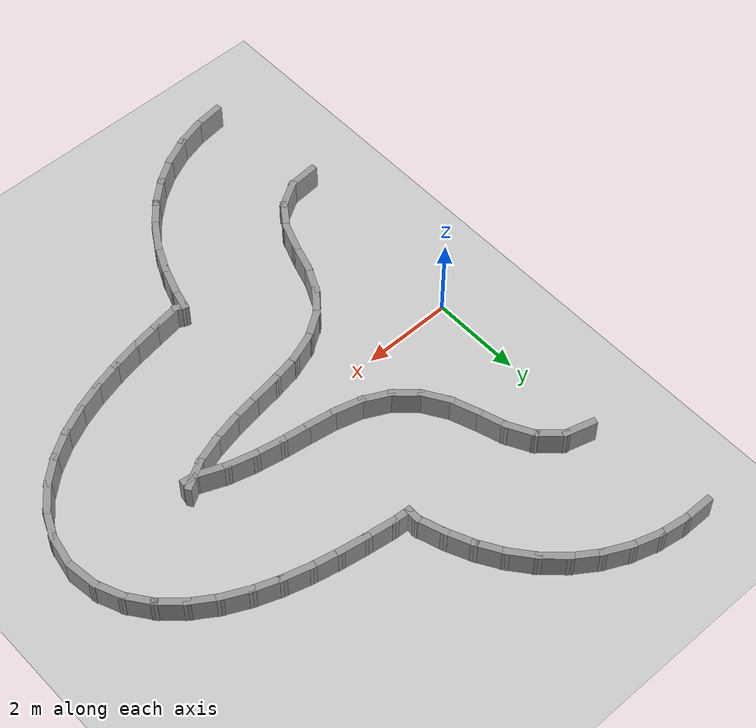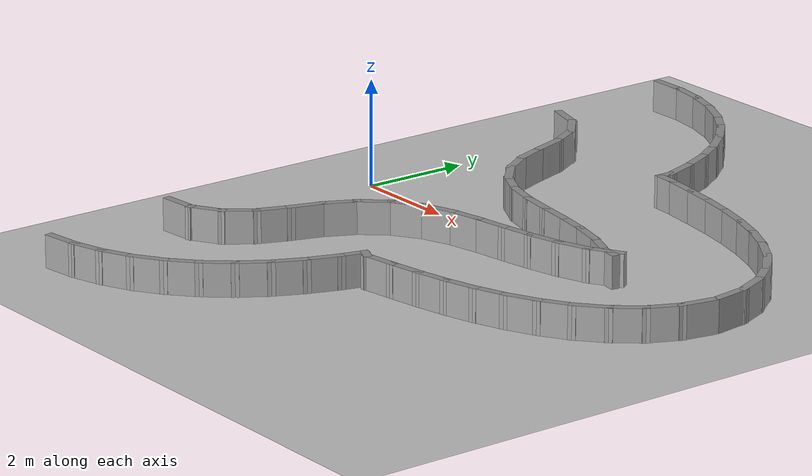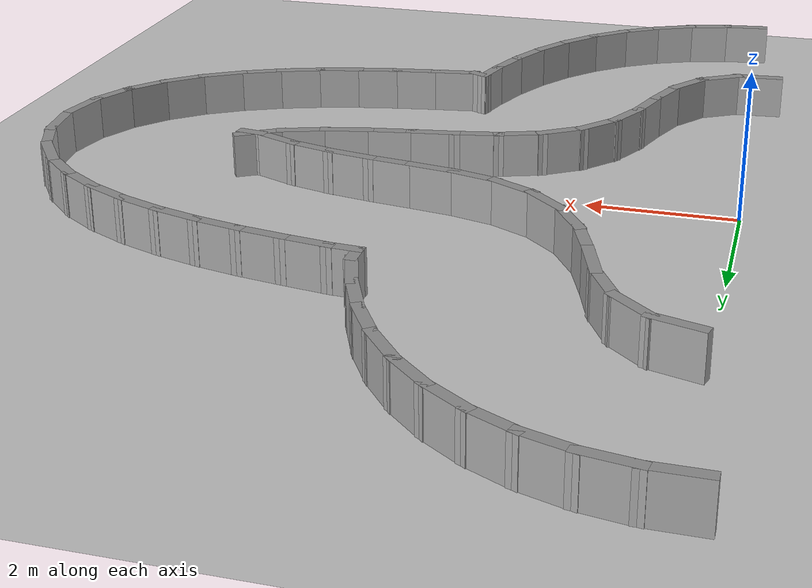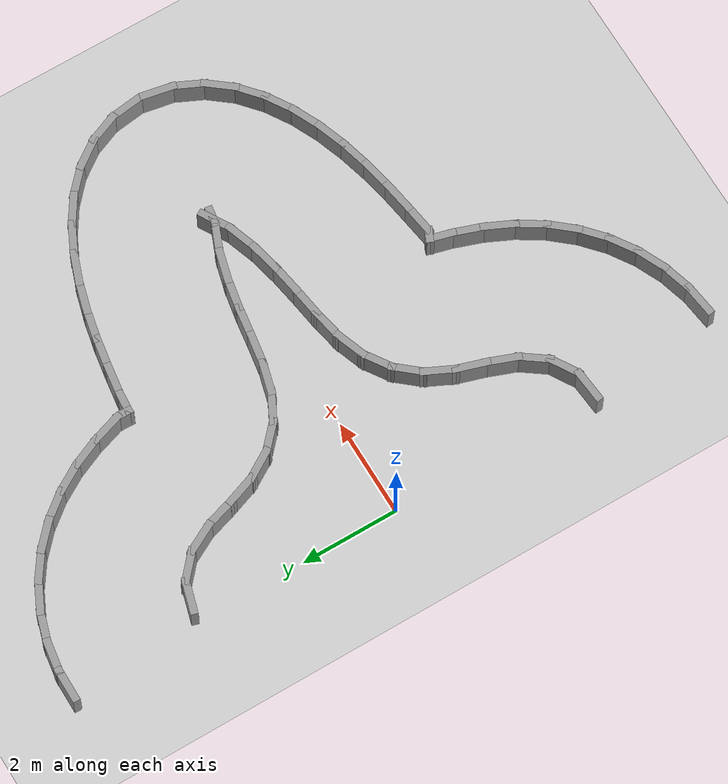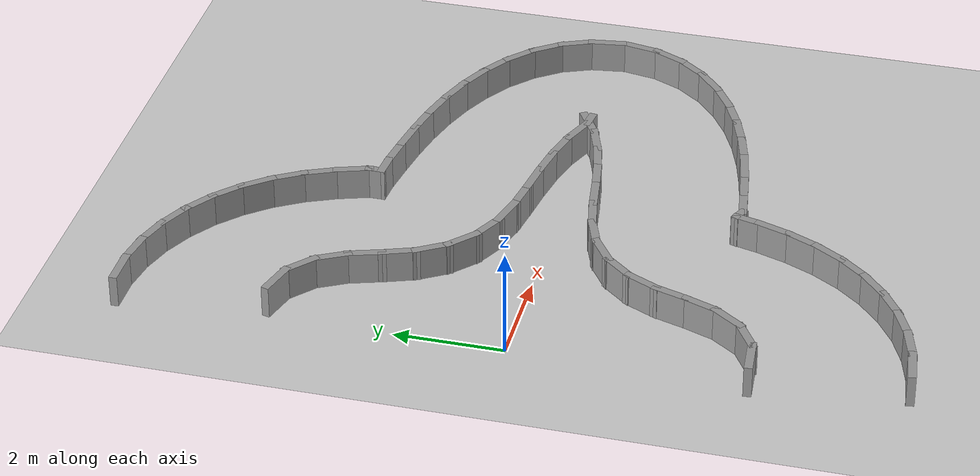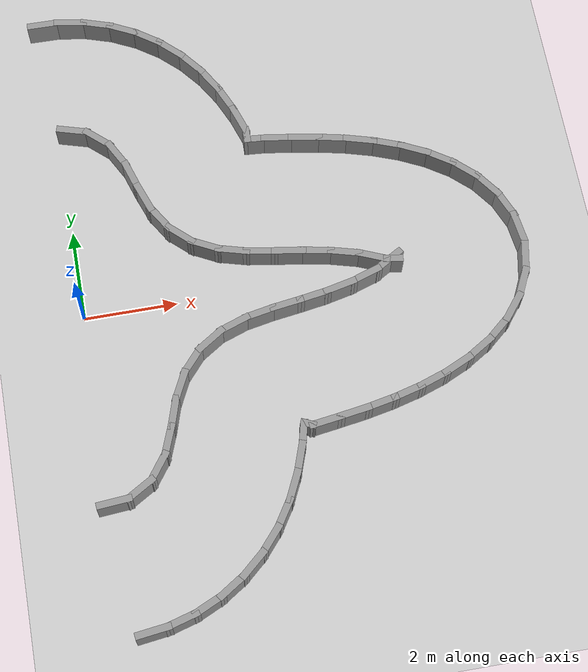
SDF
<sdf version="1.7">
 <world name="default">
  <model name="ground_plane">
   <static>1</static>
   <link name="link">
    <collision name="collision">
     <geometry><plane><normal>0 0 1</normal><size>100 100</size></plane></geometry>
     <surface><friction><ode><mu>100</mu><mu2>50</mu2></ode></friction></surface>
    </collision>
    <visual name="visual">
     <cast_shadows>0</cast_shadows>
     <geometry><plane><normal>0 0 1</normal><size>100 100</size></plane></geometry>
     <material>
      <script><uri>file://media/materials/scripts/gazebo.material</uri><name>Gazebo/Grey</name></script>
     </material>
    </visual>
   </link>
  </model>
  <model name="rand_lobed_05">
   <link name="Wall_0">
    <collision name="Wall_0_Collision">
     <geometry><box><size>0.4277 0.1500 0.6000</size></box></geometry>
     <pose>0 0 0.3000 0 -0 0</pose>
    </collision>
    <visual name="Wall_0_Visual">
     <pose>0 0 0.3000 0 -0 0</pose>
     <geometry><box><size>0.4277 0.1500 0.6000</size></box></geometry>
     <material>
      <script><uri>file://media/materials/scripts/gazebo.material</uri><name>Gazebo/Grey</name></script>
      <ambient>1 1 1 1</ambient>
     </material>
    </visual>
    <pose>6.6623 0.0193 0 0 -0 3.00180</pose>
   </link>
   <link name="Wall_1">
    <collision name="Wall_1_Collision">
     <geometry><box><size>0.7492 0.1500 0.6000</size></box></geometry>
     <pose>0 0 0.3000 0 -0 0</pose>
    </collision>
    <visual name="Wall_1_Visual">
     <pose>0 0 0.3000 0 -0 0</pose>
     <geometry><box><size>0.7492 0.1500 0.6000</size></box></geometry>
     <material>
      <script><uri>file://media/materials/scripts/gazebo.material</uri><name>Gazebo/Grey</name></script>
      <ambient>1 1 1 1</ambient>
     </material>
    </visual>
    <pose>6.2479 0.1531 0 0 -0 2.74974</pose>
   </link>
   <link name="Wall_2">
    <collision name="Wall_2_Collision">
     <geometry><box><size>0.7498 0.1500 0.6000</size></box></geometry>
     <pose>0 0 0.3000 0 -0 0</pose>
    </collision>
    <visual name="Wall_2_Visual">
     <pose>0 0 0.3000 0 -0 0</pose>
     <geometry><box><size>0.7498 0.1500 0.6000</size></box></geometry>
     <material>
      <script><uri>file://media/materials/scripts/gazebo.material</uri><name>Gazebo/Grey</name></script>
      <ambient>1 1 1 1</ambient>
     </material>
    </visual>
    <pose>5.6813 0.3449 0 0 -0 2.88060</pose>
   </link>
   <link name="Wall_3">
    <collision name="Wall_3_Collision">
     <geometry><box><size>0.7499 0.1500 0.6000</size></box></geometry>
     <pose>0 0 0.3000 0 -0 0</pose>
    </collision>
    <visual name="Wall_3_Visual">
     <pose>0 0 0.3000 0 -0 0</pose>
     <geometry><box><size>0.7499 0.1500 0.6000</size></box></geometry>
     <material>
      <script><uri>file://media/materials/scripts/gazebo.material</uri><name>Gazebo/Grey</name></script>
      <ambient>1 1 1 1</ambient>
     </material>
    </visual>
    <pose>5.0966 0.4771 0 0 -0 2.95773</pose>
   </link>
   <link name="Wall_4">
    <collision name="Wall_4_Collision">
     <geometry><box><size>0.7500 0.1500 0.6000</size></box></geometry>
     <pose>0 0 0.3000 0 -0 0</pose>
    </collision>
    <visual name="Wall_4_Visual">
     <pose>0 0 0.3000 0 -0 0</pose>
     <geometry><box><size>0.7500 0.1500 0.6000</size></box></geometry>
     <material>
      <script><uri>file://media/materials/scripts/gazebo.material</uri><name>Gazebo/Grey</name></script>
      <ambient>1 1 1 1</ambient>
     </material>
    </visual>
    <pose>4.5049 0.5756 0 0 -0 2.99577</pose>
   </link>
   <link name="Wall_5">
    <collision name="Wall_5_Collision">
     <geometry><box><size>0.7499 0.1500 0.6000</size></box></geometry>
     <pose>0 0 0.3000 0 -0 0</pose>
    </collision>
    <visual name="Wall_5_Visual">
     <pose>0 0 0.3000 0 -0 0</pose>
     <geometry><box><size>0.7499 0.1500 0.6000</size></box></geometry>
     <material>
      <script><uri>file://media/materials/scripts/gazebo.material</uri><name>Gazebo/Grey</name></script>
      <ambient>1 1 1 1</ambient>
     </material>
    </visual>
    <pose>3.9121 0.6674 0 0 -0 2.98009</pose>
   </link>
   <link name="Wall_6">
    <collision name="Wall_6_Collision">
     <geometry><box><size>0.7494 0.1500 0.6000</size></box></geometry>
     <pose>0 0 0.3000 0 -0 0</pose>
    </collision>
    <visual name="Wall_6_Visual">
     <pose>0 0 0.3000 0 -0 0</pose>
     <geometry><box><size>0.7494 0.1500 0.6000</size></box></geometry>
     <material>
      <script><uri>file://media/materials/scripts/gazebo.material</uri><name>Gazebo/Grey</name></script>
      <ambient>1 1 1 1</ambient>
     </material>
    </visual>
    <pose>3.3268 0.7943 0 0 -0 2.87596</pose>
   </link>
   <link name="Wall_7">
    <collision name="Wall_7_Collision">
     <geometry><box><size>0.7484 0.1500 0.6000</size></box></geometry>
     <pose>0 0 0.3000 0 -0 0</pose>
    </collision>
    <visual name="Wall_7_Visual">
     <pose>0 0 0.3000 0 -0 0</pose>
     <geometry><box><size>0.7484 0.1500 0.6000</size></box></geometry>
     <material>
      <script><uri>file://media/materials/scripts/gazebo.material</uri><name>Gazebo/Grey</name></script>
      <ambient>1 1 1 1</ambient>
     </material>
    </visual>
    <pose>2.7712 1.0092 0 0 -0 2.66891</pose>
   </link>
   <link name="Wall_8">
    <collision name="Wall_8_Collision">
     <geometry><box><size>0.7480 0.1500 0.6000</size></box></geometry>
     <pose>0 0 0.3000 0 -0 0</pose>
    </collision>
    <visual name="Wall_8_Visual">
     <pose>0 0 0.3000 0 -0 0</pose>
     <geometry><box><size>0.7480 0.1500 0.6000</size></box></geometry>
     <material>
      <script><uri>file://media/materials/scripts/gazebo.material</uri><name>Gazebo/Grey</name></script>
      <ambient>1 1 1 1</ambient>
     </material>
    </visual>
    <pose>2.2846 1.3477 0 0 -0 2.39866</pose>
   </link>
   <link name="Wall_9">
    <collision name="Wall_9_Collision">
     <geometry><box><size>0.7484 0.1500 0.6000</size></box></geometry>
     <pose>0 0 0.3000 0 -0 0</pose>
    </collision>
    <visual name="Wall_9_Visual">
     <pose>0 0 0.3000 0 -0 0</pose>
     <geometry><box><size>0.7484 0.1500 0.6000</size></box></geometry>
     <material>
      <script><uri>file://media/materials/scripts/gazebo.material</uri><name>Gazebo/Grey</name></script>
      <ambient>1 1 1 1</ambient>
     </material>
    </visual>
    <pose>1.9070 1.8043 0 0 -0 2.12506</pose>
   </link>
   <link name="Wall_10">
    <collision name="Wall_10_Collision">
     <geometry><box><size>0.7495 0.1500 0.6000</size></box></geometry>
     <pose>0 0 0.3000 0 -0 0</pose>
    </collision>
    <visual name="Wall_10_Visual">
     <pose>0 0 0.3000 0 -0 0</pose>
     <geometry><box><size>0.7495 0.1500 0.6000</size></box></geometry>
     <material>
      <script><uri>file://media/materials/scripts/gazebo.material</uri><name>Gazebo/Grey</name></script>
      <ambient>1 1 1 1</ambient>
     </material>
    </visual>
    <pose>1.6471 2.3404 0 0 -0 1.91933</pose>
   </link>
   <link name="Wall_11">
    <collision name="Wall_11_Collision">
     <geometry><box><size>0.7499 0.1500 0.6000</size></box></geometry>
     <pose>0 0 0.3000 0 -0 0</pose>
    </collision>
    <visual name="Wall_11_Visual">
     <pose>0 0 0.3000 0 -0 0</pose>
     <geometry><box><size>0.7499 0.1500 0.6000</size></box></geometry>
     <material>
      <script><uri>file://media/materials/scripts/gazebo.material</uri><name>Gazebo/Grey</name></script>
      <ambient>1 1 1 1</ambient>
     </material>
    </visual>
    <pose>1.4534 2.9078 0 0 -0 1.88031</pose>
   </link>
   <link name="Wall_12">
    <collision name="Wall_12_Collision">
     <geometry><box><size>0.7480 0.1500 0.6000</size></box></geometry>
     <pose>0 0 0.3000 0 -0 0</pose>
    </collision>
    <visual name="Wall_12_Visual">
     <pose>0 0 0.3000 0 -0 0</pose>
     <geometry><box><size>0.7480 0.1500 0.6000</size></box></geometry>
     <material>
      <script><uri>file://media/materials/scripts/gazebo.material</uri><name>Gazebo/Grey</name></script>
      <ambient>1 1 1 1</ambient>
     </material>
    </visual>
    <pose>1.2215 3.4574 0 0 -0 2.06008</pose>
   </link>
   <link name="Wall_13">
    <collision name="Wall_13_Collision">
     <geometry><box><size>0.7456 0.1500 0.6000</size></box></geometry>
     <pose>0 0 0.3000 0 -0 0</pose>
    </collision>
    <visual name="Wall_13_Visual">
     <pose>0 0 0.3000 0 -0 0</pose>
     <geometry><box><size>0.7456 0.1500 0.6000</size></box></geometry>
     <material>
      <script><uri>file://media/materials/scripts/gazebo.material</uri><name>Gazebo/Grey</name></script>
      <ambient>1 1 1 1</ambient>
     </material>
    </visual>
    <pose>0.8582 3.9190 0 0 -0 2.41609</pose>
   </link>
   <link name="Wall_14">
    <collision name="Wall_14_Collision">
     <geometry><box><size>0.7447 0.1500 0.6000</size></box></geometry>
     <pose>0 0 0.3000 0 -0 0</pose>
    </collision>
    <visual name="Wall_14_Visual">
     <pose>0 0 0.3000 0 -0 0</pose>
     <geometry><box><size>0.7447 0.1500 0.6000</size></box></geometry>
     <material>
      <script><uri>file://media/materials/scripts/gazebo.material</uri><name>Gazebo/Grey</name></script>
      <ambient>1 1 1 1</ambient>
     </material>
    </visual>
    <pose>0.3496 4.1989 0 0 -0 2.86089</pose>
   </link>
   <link name="Wall_45">
    <collision name="Wall_45_Collision">
     <geometry><box><size>0.7446 0.1500 0.6000</size></box></geometry>
     <pose>0 0 0.3000 0 -0 0</pose>
    </collision>
    <visual name="Wall_45_Visual">
     <pose>0 0 0.3000 0 -0 0</pose>
     <geometry><box><size>0.7446 0.1500 0.6000</size></box></geometry>
     <material>
      <script><uri>file://media/materials/scripts/gazebo.material</uri><name>Gazebo/Grey</name></script>
      <ambient>1 1 1 1</ambient>
     </material>
    </visual>
    <pose>0.1051 -4.2439 0 0 -0 0.08353</pose>
   </link>
   <link name="Wall_46">
    <collision name="Wall_46_Collision">
     <geometry><box><size>0.7450 0.1500 0.6000</size></box></geometry>
     <pose>0 0 0.3000 0 -0 0</pose>
    </collision>
    <visual name="Wall_46_Visual">
     <pose>0 0 0.3000 0 -0 0</pose>
     <geometry><box><size>0.7450 0.1500 0.6000</size></box></geometry>
     <material>
      <script><uri>file://media/materials/scripts/gazebo.material</uri><name>Gazebo/Grey</name></script>
      <ambient>1 1 1 1</ambient>
     </material>
    </visual>
    <pose>0.6564 -4.0658 0 0 -0 0.54134</pose>
   </link>
   <link name="Wall_47">
    <collision name="Wall_47_Collision">
     <geometry><box><size>0.7469 0.1500 0.6000</size></box></geometry>
     <pose>0 0 0.3000 0 -0 0</pose>
    </collision>
    <visual name="Wall_47_Visual">
     <pose>0 0 0.3000 0 -0 0</pose>
     <geometry><box><size>0.7469 0.1500 0.6000</size></box></geometry>
     <material>
      <script><uri>file://media/materials/scripts/gazebo.material</uri><name>Gazebo/Grey</name></script>
      <ambient>1 1 1 1</ambient>
     </material>
    </visual>
    <pose>1.0857 -3.6703 0 0 -0 0.94672</pose>
   </link>
   <link name="Wall_48">
    <collision name="Wall_48_Collision">
     <geometry><box><size>0.7493 0.1500 0.6000</size></box></geometry>
     <pose>0 0 0.3000 0 -0 0</pose>
    </collision>
    <visual name="Wall_48_Visual">
     <pose>0 0 0.3000 0 -0 0</pose>
     <geometry><box><size>0.7493 0.1500 0.6000</size></box></geometry>
     <material>
      <script><uri>file://media/materials/scripts/gazebo.material</uri><name>Gazebo/Grey</name></script>
      <ambient>1 1 1 1</ambient>
     </material>
    </visual>
    <pose>1.3658 -3.1477 0 0 -0 1.21052</pose>
   </link>
   <link name="Wall_49">
    <collision name="Wall_49_Collision">
     <geometry><box><size>0.7499 0.1500 0.6000</size></box></geometry>
     <pose>0 0 0.3000 0 -0 0</pose>
    </collision>
    <visual name="Wall_49_Visual">
     <pose>0 0 0.3000 0 -0 0</pose>
     <geometry><box><size>0.7499 0.1500 0.6000</size></box></geometry>
     <material>
      <script><uri>file://media/materials/scripts/gazebo.material</uri><name>Gazebo/Grey</name></script>
      <ambient>1 1 1 1</ambient>
     </material>
    </visual>
    <pose>1.5618 -2.5813 0 0 -0 1.26466</pose>
   </link>
   <link name="Wall_50">
    <collision name="Wall_50_Collision">
     <geometry><box><size>0.7488 0.1500 0.6000</size></box></geometry>
     <pose>0 0 0.3000 0 -0 0</pose>
    </collision>
    <visual name="Wall_50_Visual">
     <pose>0 0 0.3000 0 -0 0</pose>
     <geometry><box><size>0.7488 0.1500 0.6000</size></box></geometry>
     <material>
      <script><uri>file://media/materials/scripts/gazebo.material</uri><name>Gazebo/Grey</name></script>
      <ambient>1 1 1 1</ambient>
     </material>
    </visual>
    <pose>1.7832 -2.0260 0 0 -0 1.11797</pose>
   </link>
   <link name="Wall_51">
    <collision name="Wall_51_Collision">
     <geometry><box><size>0.7480 0.1500 0.6000</size></box></geometry>
     <pose>0 0 0.3000 0 -0 0</pose>
    </collision>
    <visual name="Wall_51_Visual">
     <pose>0 0 0.3000 0 -0 0</pose>
     <geometry><box><size>0.7480 0.1500 0.6000</size></box></geometry>
     <material>
      <script><uri>file://media/materials/scripts/gazebo.material</uri><name>Gazebo/Grey</name></script>
      <ambient>1 1 1 1</ambient>
     </material>
    </visual>
    <pose>2.1087 -1.5297 0 0 -0 0.86271</pose>
   </link>
   <link name="Wall_52">
    <collision name="Wall_52_Collision">
     <geometry><box><size>0.7482 0.1500 0.6000</size></box></geometry>
     <pose>0 0 0.3000 0 -0 0</pose>
    </collision>
    <visual name="Wall_52_Visual">
     <pose>0 0 0.3000 0 -0 0</pose>
     <geometry><box><size>0.7482 0.1500 0.6000</size></box></geometry>
     <material>
      <script><uri>file://media/materials/scripts/gazebo.material</uri><name>Gazebo/Grey</name></script>
      <ambient>1 1 1 1</ambient>
     </material>
    </visual>
    <pose>2.5527 -1.1378 0 0 -0 0.58359</pose>
   </link>
   <link name="Wall_53">
    <collision name="Wall_53_Collision">
     <geometry><box><size>0.7490 0.1500 0.6000</size></box></geometry>
     <pose>0 0 0.3000 0 -0 0</pose>
    </collision>
    <visual name="Wall_53_Visual">
     <pose>0 0 0.3000 0 -0 0</pose>
     <geometry><box><size>0.7490 0.1500 0.6000</size></box></geometry>
     <material>
      <script><uri>file://media/materials/scripts/gazebo.material</uri><name>Gazebo/Grey</name></script>
      <ambient>1 1 1 1</ambient>
     </material>
    </visual>
    <pose>3.0843 -0.8723 0 0 -0 0.34270</pose>
   </link>
   <link name="Wall_54">
    <collision name="Wall_54_Collision">
     <geometry><box><size>0.7498 0.1500 0.6000</size></box></geometry>
     <pose>0 0 0.3000 0 -0 0</pose>
    </collision>
    <visual name="Wall_54_Visual">
     <pose>0 0 0.3000 0 -0 0</pose>
     <geometry><box><size>0.7498 0.1500 0.6000</size></box></geometry>
     <material>
      <script><uri>file://media/materials/scripts/gazebo.material</uri><name>Gazebo/Grey</name></script>
      <ambient>1 1 1 1</ambient>
     </material>
    </visual>
    <pose>3.6607 -0.7142 0 0 -0 0.19302</pose>
   </link>
   <link name="Wall_55">
    <collision name="Wall_55_Collision">
     <geometry><box><size>0.7500 0.1500 0.6000</size></box></geometry>
     <pose>0 0 0.3000 0 -0 0</pose>
    </collision>
    <visual name="Wall_55_Visual">
     <pose>0 0 0.3000 0 -0 0</pose>
     <geometry><box><size>0.7500 0.1500 0.6000</size></box></geometry>
     <material>
      <script><uri>file://media/materials/scripts/gazebo.material</uri><name>Gazebo/Grey</name></script>
      <ambient>1 1 1 1</ambient>
     </material>
    </visual>
    <pose>4.2519 -0.6135 0 0 -0 0.14419</pose>
   </link>
   <link name="Wall_56">
    <collision name="Wall_56_Collision">
     <geometry><box><size>0.7500 0.1500 0.6000</size></box></geometry>
     <pose>0 0 0.3000 0 -0 0</pose>
    </collision>
    <visual name="Wall_56_Visual">
     <pose>0 0 0.3000 0 -0 0</pose>
     <geometry><box><size>0.7500 0.1500 0.6000</size></box></geometry>
     <material>
      <script><uri>file://media/materials/scripts/gazebo.material</uri><name>Gazebo/Grey</name></script>
      <ambient>1 1 1 1</ambient>
     </material>
    </visual>
    <pose>4.8448 -0.5219 0 0 -0 0.16259</pose>
   </link>
   <link name="Wall_57">
    <collision name="Wall_57_Collision">
     <geometry><box><size>0.7498 0.1500 0.6000</size></box></geometry>
     <pose>0 0 0.3000 0 -0 0</pose>
    </collision>
    <visual name="Wall_57_Visual">
     <pose>0 0 0.3000 0 -0 0</pose>
     <geometry><box><size>0.7498 0.1500 0.6000</size></box></geometry>
     <material>
      <script><uri>file://media/materials/scripts/gazebo.material</uri><name>Gazebo/Grey</name></script>
      <ambient>1 1 1 1</ambient>
     </material>
    </visual>
    <pose>5.4333 -0.4069 0 0 -0 0.22321</pose>
   </link>
   <link name="Wall_58">
    <collision name="Wall_58_Collision">
     <geometry><box><size>0.7496 0.1500 0.6000</size></box></geometry>
     <pose>0 0 0.3000 0 -0 0</pose>
    </collision>
    <visual name="Wall_58_Visual">
     <pose>0 0 0.3000 0 -0 0</pose>
     <geometry><box><size>0.7496 0.1500 0.6000</size></box></geometry>
     <material>
      <script><uri>file://media/materials/scripts/gazebo.material</uri><name>Gazebo/Grey</name></script>
      <ambient>1 1 1 1</ambient>
     </material>
    </visual>
    <pose>6.0098 -0.2444 0 0 -0 0.32653</pose>
   </link>
   <link name="Wall_59">
    <collision name="Wall_59_Collision">
     <geometry><box><size>0.7473 0.1500 0.6000</size></box></geometry>
     <pose>0 0 0.3000 0 -0 0</pose>
    </collision>
    <visual name="Wall_59_Visual">
     <pose>0 0 0.3000 0 -0 0</pose>
     <geometry><box><size>0.7473 0.1500 0.6000</size></box></geometry>
     <material>
      <script><uri>file://media/materials/scripts/gazebo.material</uri><name>Gazebo/Grey</name></script>
      <ambient>1 1 1 1</ambient>
     </material>
    </visual>
    <pose>6.5513 0.0028 0 0 -0 0.53036</pose>
   </link>
   <link name="Wall_60">
    <collision name="Wall_60_Collision">
     <geometry><box><size>0.7482 0.1500 0.6000</size></box></geometry>
     <pose>0 0 0.3000 0 -0 0</pose>
    </collision>
    <visual name="Wall_60_Visual">
     <pose>0 0 0.3000 0 -0 0</pose>
     <geometry><box><size>0.7482 0.1500 0.6000</size></box></geometry>
     <material>
      <script><uri>file://media/materials/scripts/gazebo.material</uri><name>Gazebo/Grey</name></script>
      <ambient>1 1 1 1</ambient>
     </material>
    </visual>
    <pose>9.4550 0.2964 0 0 -0 1.70557</pose>
   </link>
   <link name="Wall_61">
    <collision name="Wall_61_Collision">
     <geometry><box><size>0.7484 0.1500 0.6000</size></box></geometry>
     <pose>0 0 0.3000 0 -0 0</pose>
    </collision>
    <visual name="Wall_61_Visual">
     <pose>0 0 0.3000 0 -0 0</pose>
     <geometry><box><size>0.7484 0.1500 0.6000</size></box></geometry>
     <material>
      <script><uri>file://media/materials/scripts/gazebo.material</uri><name>Gazebo/Grey</name></script>
      <ambient>1 1 1 1</ambient>
     </material>
    </visual>
    <pose>9.2999 0.8690 0 0 -0 1.96512</pose>
   </link>
   <link name="Wall_62">
    <collision name="Wall_62_Collision">
     <geometry><box><size>0.7488 0.1500 0.6000</size></box></geometry>
     <pose>0 0 0.3000 0 -0 0</pose>
    </collision>
    <visual name="Wall_62_Visual">
     <pose>0 0 0.3000 0 -0 0</pose>
     <geometry><box><size>0.7488 0.1500 0.6000</size></box></geometry>
     <material>
      <script><uri>file://media/materials/scripts/gazebo.material</uri><name>Gazebo/Grey</name></script>
      <ambient>1 1 1 1</ambient>
     </material>
    </visual>
    <pose>9.0086 1.3873 0 0 -0 2.20027</pose>
   </link>
   <link name="Wall_63">
    <collision name="Wall_63_Collision">
     <geometry><box><size>0.7492 0.1500 0.6000</size></box></geometry>
     <pose>0 0 0.3000 0 -0 0</pose>
    </collision>
    <visual name="Wall_63_Visual">
     <pose>0 0 0.3000 0 -0 0</pose>
     <geometry><box><size>0.7492 0.1500 0.6000</size></box></geometry>
     <material>
      <script><uri>file://media/materials/scripts/gazebo.material</uri><name>Gazebo/Grey</name></script>
      <ambient>1 1 1 1</ambient>
     </material>
    </visual>
    <pose>8.6116 1.8318 0 0 -0 2.39923</pose>
   </link>
   <link name="Wall_64">
    <collision name="Wall_64_Collision">
     <geometry><box><size>0.7495 0.1500 0.6000</size></box></geometry>
     <pose>0 0 0.3000 0 -0 0</pose>
    </collision>
    <visual name="Wall_64_Visual">
     <pose>0 0 0.3000 0 -0 0</pose>
     <geometry><box><size>0.7495 0.1500 0.6000</size></box></geometry>
     <material>
      <script><uri>file://media/materials/scripts/gazebo.material</uri><name>Gazebo/Grey</name></script>
      <ambient>1 1 1 1</ambient>
     </material>
    </visual>
    <pose>8.1404 2.1991 0 0 -0 2.55971</pose>
   </link>
   <link name="Wall_65">
    <collision name="Wall_65_Collision">
     <geometry><box><size>0.7497 0.1500 0.6000</size></box></geometry>
     <pose>0 0 0.3000 0 -0 0</pose>
    </collision>
    <visual name="Wall_65_Visual">
     <pose>0 0 0.3000 0 -0 0</pose>
     <geometry><box><size>0.7497 0.1500 0.6000</size></box></geometry>
     <material>
      <script><uri>file://media/materials/scripts/gazebo.material</uri><name>Gazebo/Grey</name></script>
      <ambient>1 1 1 1</ambient>
     </material>
    </visual>
    <pose>7.6207 2.4956 0 0 -0 2.68655</pose>
   </link>
   <link name="Wall_66">
    <collision name="Wall_66_Collision">
     <geometry><box><size>0.7498 0.1500 0.6000</size></box></geometry>
     <pose>0 0 0.3000 0 -0 0</pose>
    </collision>
    <visual name="Wall_66_Visual">
     <pose>0 0 0.3000 0 -0 0</pose>
     <geometry><box><size>0.7498 0.1500 0.6000</size></box></geometry>
     <material>
      <script><uri>file://media/materials/scripts/gazebo.material</uri><name>Gazebo/Grey</name></script>
      <ambient>1 1 1 1</ambient>
     </material>
    </visual>
    <pose>7.0702 2.7316 0 0 -0 2.78669</pose>
   </link>
   <link name="Wall_67">
    <collision name="Wall_67_Collision">
     <geometry><box><size>0.7499 0.1500 0.6000</size></box></geometry>
     <pose>0 0 0.3000 0 -0 0</pose>
    </collision>
    <visual name="Wall_67_Visual">
     <pose>0 0 0.3000 0 -0 0</pose>
     <geometry><box><size>0.7499 0.1500 0.6000</size></box></geometry>
     <material>
      <script><uri>file://media/materials/scripts/gazebo.material</uri><name>Gazebo/Grey</name></script>
      <ambient>1 1 1 1</ambient>
     </material>
    </visual>
    <pose>6.5003 2.9173 0 0 -0 2.86653</pose>
   </link>
   <link name="Wall_68">
    <collision name="Wall_68_Collision">
     <geometry><box><size>0.7499 0.1500 0.6000</size></box></geometry>
     <pose>0 0 0.3000 0 -0 0</pose>
    </collision>
    <visual name="Wall_68_Visual">
     <pose>0 0 0.3000 0 -0 0</pose>
     <geometry><box><size>0.7499 0.1500 0.6000</size></box></geometry>
     <material>
      <script><uri>file://media/materials/scripts/gazebo.material</uri><name>Gazebo/Grey</name></script>
      <ambient>1 1 1 1</ambient>
     </material>
    </visual>
    <pose>5.9184 3.0618 0 0 -0 2.92980</pose>
   </link>
   <link name="Wall_69">
    <collision name="Wall_69_Collision">
     <geometry><box><size>0.7500 0.1500 0.6000</size></box></geometry>
     <pose>0 0 0.3000 0 -0 0</pose>
    </collision>
    <visual name="Wall_69_Visual">
     <pose>0 0 0.3000 0 -0 0</pose>
     <geometry><box><size>0.7500 0.1500 0.6000</size></box></geometry>
     <material>
      <script><uri>file://media/materials/scripts/gazebo.material</uri><name>Gazebo/Grey</name></script>
      <ambient>1 1 1 1</ambient>
     </material>
    </visual>
    <pose>5.3292 3.1742 0 0 -0 2.97648</pose>
   </link>
   <link name="Wall_70">
    <collision name="Wall_70_Collision">
     <geometry><box><size>0.7500 0.1500 0.6000</size></box></geometry>
     <pose>0 0 0.3000 0 -0 0</pose>
    </collision>
    <visual name="Wall_70_Visual">
     <pose>0 0 0.3000 0 -0 0</pose>
     <geometry><box><size>0.7500 0.1500 0.6000</size></box></geometry>
     <material>
      <script><uri>file://media/materials/scripts/gazebo.material</uri><name>Gazebo/Grey</name></script>
      <ambient>1 1 1 1</ambient>
     </material>
    </visual>
    <pose>4.7364 3.2664 0 0 -0 2.99805</pose>
   </link>
   <link name="Wall_71">
    <collision name="Wall_71_Collision">
     <geometry><box><size>0.5195 0.1500 0.6000</size></box></geometry>
     <pose>0 0 0.3000 0 -0 0</pose>
    </collision>
    <visual name="Wall_71_Visual">
     <pose>0 0 0.3000 0 -0 0</pose>
     <geometry><box><size>0.5195 0.1500 0.6000</size></box></geometry>
     <material>
      <script><uri>file://media/materials/scripts/gazebo.material</uri><name>Gazebo/Grey</name></script>
      <ambient>1 1 1 1</ambient>
     </material>
    </visual>
    <pose>4.2553 3.3230 0 0 -0 3.06724</pose>
   </link>
   <link name="Wall_72">
    <collision name="Wall_72_Collision">
     <geometry><box><size>0.3846 0.1500 0.6000</size></box></geometry>
     <pose>0 0 0.3000 0 -0 0</pose>
    </collision>
    <visual name="Wall_72_Visual">
     <pose>0 0 0.3000 0 -0 0</pose>
     <geometry><box><size>0.3846 0.1500 0.6000</size></box></geometry>
     <material>
      <script><uri>file://media/materials/scripts/gazebo.material</uri><name>Gazebo/Grey</name></script>
      <ambient>1 1 1 1</ambient>
     </material>
    </visual>
    <pose>4.0727 3.4540 0 0 -0 1.55675</pose>
   </link>
   <link name="Wall_73">
    <collision name="Wall_73_Collision">
     <geometry><box><size>0.7499 0.1500 0.6000</size></box></geometry>
     <pose>0 0 0.3000 0 -0 0</pose>
    </collision>
    <visual name="Wall_73_Visual">
     <pose>0 0 0.3000 0 -0 0</pose>
     <geometry><box><size>0.7499 0.1500 0.6000</size></box></geometry>
     <material>
      <script><uri>file://media/materials/scripts/gazebo.material</uri><name>Gazebo/Grey</name></script>
      <ambient>1 1 1 1</ambient>
     </material>
    </visual>
    <pose>3.9799 3.8560 0 0 -0 1.89102</pose>
   </link>
   <link name="Wall_74">
    <collision name="Wall_74_Collision">
     <geometry><box><size>0.7497 0.1500 0.6000</size></box></geometry>
     <pose>0 0 0.3000 0 -0 0</pose>
    </collision>
    <visual name="Wall_74_Visual">
     <pose>0 0 0.3000 0 -0 0</pose>
     <geometry><box><size>0.7497 0.1500 0.6000</size></box></geometry>
     <material>
      <script><uri>file://media/materials/scripts/gazebo.material</uri><name>Gazebo/Grey</name></script>
      <ambient>1 1 1 1</ambient>
     </material>
    </visual>
    <pose>3.7641 4.4149 0 0 -0 1.98752</pose>
   </link>
   <link name="Wall_75">
    <collision name="Wall_75_Collision">
     <geometry><box><size>0.7496 0.1500 0.6000</size></box></geometry>
     <pose>0 0 0.3000 0 -0 0</pose>
    </collision>
    <visual name="Wall_75_Visual">
     <pose>0 0 0.3000 0 -0 0</pose>
     <geometry><box><size>0.7496 0.1500 0.6000</size></box></geometry>
     <material>
      <script><uri>file://media/materials/scripts/gazebo.material</uri><name>Gazebo/Grey</name></script>
      <ambient>1 1 1 1</ambient>
     </material>
    </visual>
    <pose>3.4887 4.9462 0 0 -0 2.11045</pose>
   </link>
   <link name="Wall_76">
    <collision name="Wall_76_Collision">
     <geometry><box><size>0.7495 0.1500 0.6000</size></box></geometry>
     <pose>0 0 0.3000 0 -0 0</pose>
    </collision>
    <visual name="Wall_76_Visual">
     <pose>0 0 0.3000 0 -0 0</pose>
     <geometry><box><size>0.7495 0.1500 0.6000</size></box></geometry>
     <material>
      <script><uri>file://media/materials/scripts/gazebo.material</uri><name>Gazebo/Grey</name></script>
      <ambient>1 1 1 1</ambient>
     </material>
    </visual>
    <pose>3.1474 5.4374 0 0 -0 2.24574</pose>
   </link>
   <link name="Wall_77">
    <collision name="Wall_77_Collision">
     <geometry><box><size>0.7495 0.1500 0.6000</size></box></geometry>
     <pose>0 0 0.3000 0 -0 0</pose>
    </collision>
    <visual name="Wall_77_Visual">
     <pose>0 0 0.3000 0 -0 0</pose>
     <geometry><box><size>0.7495 0.1500 0.6000</size></box></geometry>
     <material>
      <script><uri>file://media/materials/scripts/gazebo.material</uri><name>Gazebo/Grey</name></script>
      <ambient>1 1 1 1</ambient>
     </material>
    </visual>
    <pose>2.7415 5.8765 0 0 -0 2.38832</pose>
   </link>
   <link name="Wall_78">
    <collision name="Wall_78_Collision">
     <geometry><box><size>0.7495 0.1500 0.6000</size></box></geometry>
     <pose>0 0 0.3000 0 -0 0</pose>
    </collision>
    <visual name="Wall_78_Visual">
     <pose>0 0 0.3000 0 -0 0</pose>
     <geometry><box><size>0.7495 0.1500 0.6000</size></box></geometry>
     <material>
      <script><uri>file://media/materials/scripts/gazebo.material</uri><name>Gazebo/Grey</name></script>
      <ambient>1 1 1 1</ambient>
     </material>
    </visual>
    <pose>2.2766 6.2525 0 0 -0 2.53464</pose>
   </link>
   <link name="Wall_79">
    <collision name="Wall_79_Collision">
     <geometry><box><size>0.7494 0.1500 0.6000</size></box></geometry>
     <pose>0 0 0.3000 0 -0 0</pose>
    </collision>
    <visual name="Wall_79_Visual">
     <pose>0 0 0.3000 0 -0 0</pose>
     <geometry><box><size>0.7494 0.1500 0.6000</size></box></geometry>
     <material>
      <script><uri>file://media/materials/scripts/gazebo.material</uri><name>Gazebo/Grey</name></script>
      <ambient>1 1 1 1</ambient>
     </material>
    </visual>
    <pose>1.7616 6.5560 0 0 -0 2.68359</pose>
   </link>
   <link name="Wall_80">
    <collision name="Wall_80_Collision">
     <geometry><box><size>0.7494 0.1500 0.6000</size></box></geometry>
     <pose>0 0 0.3000 0 -0 0</pose>
    </collision>
    <visual name="Wall_80_Visual">
     <pose>0 0 0.3000 0 -0 0</pose>
     <geometry><box><size>0.7494 0.1500 0.6000</size></box></geometry>
     <material>
      <script><uri>file://media/materials/scripts/gazebo.material</uri><name>Gazebo/Grey</name></script>
      <ambient>1 1 1 1</ambient>
     </material>
    </visual>
    <pose>1.2072 6.7794 0 0 -0 2.83336</pose>
   </link>
   <link name="Wall_81">
    <collision name="Wall_81_Collision">
     <geometry><box><size>0.7494 0.1500 0.6000</size></box></geometry>
     <pose>0 0 0.3000 0 -0 0</pose>
    </collision>
    <visual name="Wall_81_Visual">
     <pose>0 0 0.3000 0 -0 0</pose>
     <geometry><box><size>0.7494 0.1500 0.6000</size></box></geometry>
     <material>
      <script><uri>file://media/materials/scripts/gazebo.material</uri><name>Gazebo/Grey</name></script>
      <ambient>1 1 1 1</ambient>
     </material>
    </visual>
    <pose>0.6256 6.9175 0 0 -0 2.98360</pose>
   </link>
   <link name="Wall_82">
    <collision name="Wall_82_Collision">
     <geometry><box><size>0.7494 0.1500 0.6000</size></box></geometry>
     <pose>0 0 0.3000 0 -0 0</pose>
    </collision>
    <visual name="Wall_82_Visual">
     <pose>0 0 0.3000 0 -0 0</pose>
     <geometry><box><size>0.7494 0.1500 0.6000</size></box></geometry>
     <material>
      <script><uri>file://media/materials/scripts/gazebo.material</uri><name>Gazebo/Grey</name></script>
      <ambient>1 1 1 1</ambient>
     </material>
    </visual>
    <pose>0.0299 6.9669 0 0 -0 3.13412</pose>
   </link>
   <link name="Wall_128">
    <collision name="Wall_128_Collision">
     <geometry><box><size>0.7494 0.1500 0.6000</size></box></geometry>
     <pose>0 0 0.3000 0 -0 0</pose>
    </collision>
    <visual name="Wall_128_Visual">
     <pose>0 0 0.3000 0 -0 0</pose>
     <geometry><box><size>0.7494 0.1500 0.6000</size></box></geometry>
     <material>
      <script><uri>file://media/materials/scripts/gazebo.material</uri><name>Gazebo/Grey</name></script>
      <ambient>1 1 1 1</ambient>
     </material>
    </visual>
    <pose>0.5072 -6.9345 0 0 -0 0.12790</pose>
   </link>
   <link name="Wall_129">
    <collision name="Wall_129_Collision">
     <geometry><box><size>0.7494 0.1500 0.6000</size></box></geometry>
     <pose>0 0 0.3000 0 -0 0</pose>
    </collision>
    <visual name="Wall_129_Visual">
     <pose>0 0 0.3000 0 -0 0</pose>
     <geometry><box><size>0.7494 0.1500 0.6000</size></box></geometry>
     <material>
      <script><uri>file://media/materials/scripts/gazebo.material</uri><name>Gazebo/Grey</name></script>
      <ambient>1 1 1 1</ambient>
     </material>
    </visual>
    <pose>1.0927 -6.8139 0 0 -0 0.27820</pose>
   </link>
   <link name="Wall_130">
    <collision name="Wall_130_Collision">
     <geometry><box><size>0.7494 0.1500 0.6000</size></box></geometry>
     <pose>0 0 0.3000 0 -0 0</pose>
    </collision>
    <visual name="Wall_130_Visual">
     <pose>0 0 0.3000 0 -0 0</pose>
     <geometry><box><size>0.7494 0.1500 0.6000</size></box></geometry>
     <material>
      <script><uri>file://media/materials/scripts/gazebo.material</uri><name>Gazebo/Grey</name></script>
      <ambient>1 1 1 1</ambient>
     </material>
    </visual>
    <pose>1.6535 -6.6072 0 0 -0 0.42815</pose>
   </link>
   <link name="Wall_131">
    <collision name="Wall_131_Collision">
     <geometry><box><size>0.7494 0.1500 0.6000</size></box></geometry>
     <pose>0 0 0.3000 0 -0 0</pose>
    </collision>
    <visual name="Wall_131_Visual">
     <pose>0 0 0.3000 0 -0 0</pose>
     <geometry><box><size>0.7494 0.1500 0.6000</size></box></geometry>
     <material>
      <script><uri>file://media/materials/scripts/gazebo.material</uri><name>Gazebo/Grey</name></script>
      <ambient>1 1 1 1</ambient>
     </material>
    </visual>
    <pose>2.1774 -6.3192 0 0 -0 0.57715</pose>
   </link>
   <link name="Wall_132">
    <collision name="Wall_132_Collision">
     <geometry><box><size>0.7495 0.1500 0.6000</size></box></geometry>
     <pose>0 0 0.3000 0 -0 0</pose>
    </collision>
    <visual name="Wall_132_Visual">
     <pose>0 0 0.3000 0 -0 0</pose>
     <geometry><box><size>0.7495 0.1500 0.6000</size></box></geometry>
     <material>
      <script><uri>file://media/materials/scripts/gazebo.material</uri><name>Gazebo/Grey</name></script>
      <ambient>1 1 1 1</ambient>
     </material>
    </visual>
    <pose>2.6530 -5.9570 0 0 -0 0.72440</pose>
   </link>
   <link name="Wall_133">
    <collision name="Wall_133_Collision">
     <geometry><box><size>0.7495 0.1500 0.6000</size></box></geometry>
     <pose>0 0 0.3000 0 -0 0</pose>
    </collision>
    <visual name="Wall_133_Visual">
     <pose>0 0 0.3000 0 -0 0</pose>
     <geometry><box><size>0.7495 0.1500 0.6000</size></box></geometry>
     <material>
      <script><uri>file://media/materials/scripts/gazebo.material</uri><name>Gazebo/Grey</name></script>
      <ambient>1 1 1 1</ambient>
     </material>
    </visual>
    <pose>3.0713 -5.5298 0 0 -0 0.86770</pose>
   </link>
   <link name="Wall_134">
    <collision name="Wall_134_Collision">
     <geometry><box><size>0.7496 0.1500 0.6000</size></box></geometry>
     <pose>0 0 0.3000 0 -0 0</pose>
    </collision>
    <visual name="Wall_134_Visual">
     <pose>0 0 0.3000 0 -0 0</pose>
     <geometry><box><size>0.7496 0.1500 0.6000</size></box></geometry>
     <material>
      <script><uri>file://media/materials/scripts/gazebo.material</uri><name>Gazebo/Grey</name></script>
      <ambient>1 1 1 1</ambient>
     </material>
    </visual>
    <pose>3.4258 -5.0480 0 0 -0 1.00487</pose>
   </link>
   <link name="Wall_135">
    <collision name="Wall_135_Collision">
     <geometry><box><size>0.7496 0.1500 0.6000</size></box></geometry>
     <pose>0 0 0.3000 0 -0 0</pose>
    </collision>
    <visual name="Wall_135_Visual">
     <pose>0 0 0.3000 0 -0 0</pose>
     <geometry><box><size>0.7496 0.1500 0.6000</size></box></geometry>
     <material>
      <script><uri>file://media/materials/scripts/gazebo.material</uri><name>Gazebo/Grey</name></script>
      <ambient>1 1 1 1</ambient>
     </material>
    </visual>
    <pose>3.7142 -4.5237 0 0 -0 1.13096</pose>
   </link>
   <link name="Wall_136">
    <collision name="Wall_136_Collision">
     <geometry><box><size>0.7498 0.1500 0.6000</size></box></geometry>
     <pose>0 0 0.3000 0 -0 0</pose>
    </collision>
    <visual name="Wall_136_Visual">
     <pose>0 0 0.3000 0 -0 0</pose>
     <geometry><box><size>0.7498 0.1500 0.6000</size></box></geometry>
     <material>
      <script><uri>file://media/materials/scripts/gazebo.material</uri><name>Gazebo/Grey</name></script>
      <ambient>1 1 1 1</ambient>
     </material>
    </visual>
    <pose>3.9408 -3.9693 0 0 -0 1.23493</pose>
   </link>
   <link name="Wall_137">
    <collision name="Wall_137_Collision">
     <geometry><box><size>0.5999 0.1500 0.6000</size></box></geometry>
     <pose>0 0 0.3000 0 -0 0</pose>
    </collision>
    <visual name="Wall_137_Visual">
     <pose>0 0 0.3000 0 -0 0</pose>
     <geometry><box><size>0.5999 0.1500 0.6000</size></box></geometry>
     <material>
      <script><uri>file://media/materials/scripts/gazebo.material</uri><name>Gazebo/Grey</name></script>
      <ambient>1 1 1 1</ambient>
     </material>
    </visual>
    <pose>4.0972 -3.4687 0 0 -0 1.31187</pose>
   </link>
   <link name="Wall_138">
    <collision name="Wall_138_Collision">
     <geometry><box><size>0.3329 0.1500 0.6000</size></box></geometry>
     <pose>0 0 0.3000 0 -0 0</pose>
    </collision>
    <visual name="Wall_138_Visual">
     <pose>0 0 0.3000 0 -0 0</pose>
     <geometry><box><size>0.3329 0.1500 0.6000</size></box></geometry>
     <material>
      <script><uri>file://media/materials/scripts/gazebo.material</uri><name>Gazebo/Grey</name></script>
      <ambient>1 1 1 1</ambient>
     </material>
    </visual>
    <pose>4.2379 -3.2894 0 0 -0 -0.43121</pose>
   </link>
   <link name="Wall_139">
    <collision name="Wall_139_Collision">
     <geometry><box><size>0.7500 0.1500 0.6000</size></box></geometry>
     <pose>0 0 0.3000 0 -0 0</pose>
    </collision>
    <visual name="Wall_139_Visual">
     <pose>0 0 0.3000 0 -0 0</pose>
     <geometry><box><size>0.7500 0.1500 0.6000</size></box></geometry>
     <material>
      <script><uri>file://media/materials/scripts/gazebo.material</uri><name>Gazebo/Grey</name></script>
      <ambient>1 1 1 1</ambient>
     </material>
    </visual>
    <pose>4.6178 -3.2843 0 0 -0 0.14496</pose>
   </link>
   <link name="Wall_140">
    <collision name="Wall_140_Collision">
     <geometry><box><size>0.7500 0.1500 0.6000</size></box></geometry>
     <pose>0 0 0.3000 0 -0 0</pose>
    </collision>
    <visual name="Wall_140_Visual">
     <pose>0 0 0.3000 0 -0 0</pose>
     <geometry><box><size>0.7500 0.1500 0.6000</size></box></geometry>
     <material>
      <script><uri>file://media/materials/scripts/gazebo.material</uri><name>Gazebo/Grey</name></script>
      <ambient>1 1 1 1</ambient>
     </material>
    </visual>
    <pose>5.2109 -3.1937 0 0 -0 0.15821</pose>
   </link>
   <link name="Wall_141">
    <collision name="Wall_141_Collision">
     <geometry><box><size>0.7499 0.1500 0.6000</size></box></geometry>
     <pose>0 0 0.3000 0 -0 0</pose>
    </collision>
    <visual name="Wall_141_Visual">
     <pose>0 0 0.3000 0 -0 0</pose>
     <geometry><box><size>0.7499 0.1500 0.6000</size></box></geometry>
     <material>
      <script><uri>file://media/materials/scripts/gazebo.material</uri><name>Gazebo/Grey</name></script>
      <ambient>1 1 1 1</ambient>
     </material>
    </visual>
    <pose>5.8010 -3.0865 0 0 -0 0.20104</pose>
   </link>
   <link name="Wall_142">
    <collision name="Wall_142_Collision">
     <geometry><box><size>0.7499 0.1500 0.6000</size></box></geometry>
     <pose>0 0 0.3000 0 -0 0</pose>
    </collision>
    <visual name="Wall_142_Visual">
     <pose>0 0 0.3000 0 -0 0</pose>
     <geometry><box><size>0.7499 0.1500 0.6000</size></box></geometry>
     <material>
      <script><uri>file://media/materials/scripts/gazebo.material</uri><name>Gazebo/Grey</name></script>
      <ambient>1 1 1 1</ambient>
     </material>
    </visual>
    <pose>6.3847 -2.9492 0 0 -0 0.26112</pose>
   </link>
   <link name="Wall_143">
    <collision name="Wall_143_Collision">
     <geometry><box><size>0.7498 0.1500 0.6000</size></box></geometry>
     <pose>0 0 0.3000 0 -0 0</pose>
    </collision>
    <visual name="Wall_143_Visual">
     <pose>0 0 0.3000 0 -0 0</pose>
     <geometry><box><size>0.7498 0.1500 0.6000</size></box></geometry>
     <material>
      <script><uri>file://media/materials/scripts/gazebo.material</uri><name>Gazebo/Grey</name></script>
      <ambient>1 1 1 1</ambient>
     </material>
    </visual>
    <pose>6.9575 -2.7725 0 0 -0 0.33747</pose>
   </link>
   <link name="Wall_144">
    <collision name="Wall_144_Collision">
     <geometry><box><size>0.7497 0.1500 0.6000</size></box></geometry>
     <pose>0 0 0.3000 0 -0 0</pose>
    </collision>
    <visual name="Wall_144_Visual">
     <pose>0 0 0.3000 0 -0 0</pose>
     <geometry><box><size>0.7497 0.1500 0.6000</size></box></geometry>
     <material>
      <script><uri>file://media/materials/scripts/gazebo.material</uri><name>Gazebo/Grey</name></script>
      <ambient>1 1 1 1</ambient>
     </material>
    </visual>
    <pose>7.5127 -2.5473 0 0 -0 0.43325</pose>
   </link>
   <link name="Wall_145">
    <collision name="Wall_145_Collision">
     <geometry><box><size>0.7495 0.1500 0.6000</size></box></geometry>
     <pose>0 0 0.3000 0 -0 0</pose>
    </collision>
    <visual name="Wall_145_Visual">
     <pose>0 0 0.3000 0 -0 0</pose>
     <geometry><box><size>0.7495 0.1500 0.6000</size></box></geometry>
     <material>
      <script><uri>file://media/materials/scripts/gazebo.material</uri><name>Gazebo/Grey</name></script>
      <ambient>1 1 1 1</ambient>
     </material>
    </visual>
    <pose>8.0398 -2.2637 0 0 -0 0.55390</pose>
   </link>
   <link name="Wall_146">
    <collision name="Wall_146_Collision">
     <geometry><box><size>0.7493 0.1500 0.6000</size></box></geometry>
     <pose>0 0 0.3000 0 -0 0</pose>
    </collision>
    <visual name="Wall_146_Visual">
     <pose>0 0 0.3000 0 -0 0</pose>
     <geometry><box><size>0.7493 0.1500 0.6000</size></box></geometry>
     <material>
      <script><uri>file://media/materials/scripts/gazebo.material</uri><name>Gazebo/Grey</name></script>
      <ambient>1 1 1 1</ambient>
     </material>
    </visual>
    <pose>8.5225 -1.9114 0 0 -0 0.70730</pose>
   </link>
   <link name="Wall_147">
    <collision name="Wall_147_Collision">
     <geometry><box><size>0.7489 0.1500 0.6000</size></box></geometry>
     <pose>0 0 0.3000 0 -0 0</pose>
    </collision>
    <visual name="Wall_147_Visual">
     <pose>0 0 0.3000 0 -0 0</pose>
     <geometry><box><size>0.7489 0.1500 0.6000</size></box></geometry>
     <material>
      <script><uri>file://media/materials/scripts/gazebo.material</uri><name>Gazebo/Grey</name></script>
      <ambient>1 1 1 1</ambient>
     </material>
    </visual>
    <pose>8.9367 -1.4824 0 0 -0 0.89854</pose>
   </link>
   <link name="Wall_148">
    <collision name="Wall_148_Collision">
     <geometry><box><size>0.7485 0.1500 0.6000</size></box></geometry>
     <pose>0 0 0.3000 0 -0 0</pose>
    </collision>
    <visual name="Wall_148_Visual">
     <pose>0 0 0.3000 0 -0 0</pose>
     <geometry><box><size>0.7485 0.1500 0.6000</size></box></geometry>
     <material>
      <script><uri>file://media/materials/scripts/gazebo.material</uri><name>Gazebo/Grey</name></script>
      <ambient>1 1 1 1</ambient>
     </material>
    </visual>
    <pose>9.2517 -0.9778 0 0 -0 1.12698</pose>
   </link>
   <link name="Wall_149">
    <collision name="Wall_149_Collision">
     <geometry><box><size>0.7482 0.1500 0.6000</size></box></geometry>
     <pose>0 0 0.3000 0 -0 0</pose>
    </collision>
    <visual name="Wall_149_Visual">
     <pose>0 0 0.3000 0 -0 0</pose>
     <geometry><box><size>0.7482 0.1500 0.6000</size></box></geometry>
     <material>
      <script><uri>file://media/materials/scripts/gazebo.material</uri><name>Gazebo/Grey</name></script>
      <ambient>1 1 1 1</ambient>
     </material>
    </visual>
    <pose>9.4360 -0.4137 0 0 -0 1.38300</pose>
   </link>
   <static>1</static>
  </model>
 </world>
</sdf>
